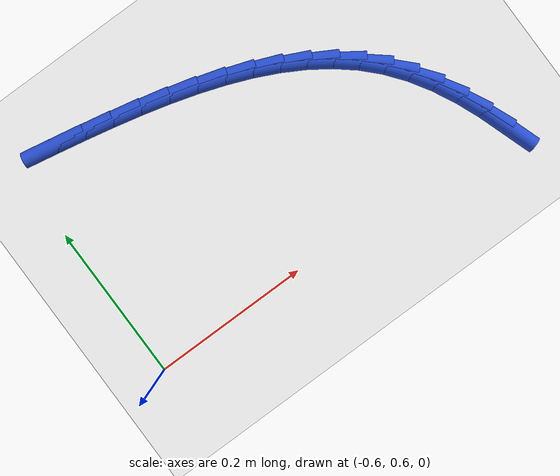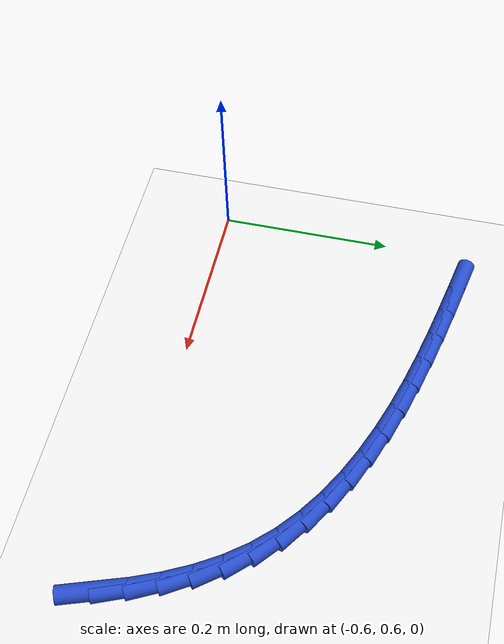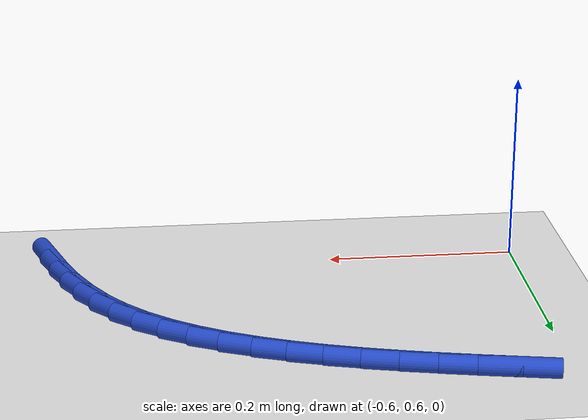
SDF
<sdf version="1.6">
 <world name="default">
  <model name="ground_plane">
   <static>1</static>
   <link name="link">
    <collision name="collision">
     <geometry><plane><normal>0 0 1</normal><size>100 100</size></plane></geometry>
     <surface><friction><ode><mu>100</mu><mu2>50</mu2></ode></friction></surface>
    </collision>
    <visual name="visual">
     <cast_shadows>0</cast_shadows>
     <geometry><plane><normal>0 0 1</normal><size>100 100</size></plane></geometry>
     <material>
      <script><uri>file://media/materials/scripts/gazebo.material</uri><name>Gazebo/WhiteGlow</name></script>
     </material>
    </visual>
   </link>
  </model>
  <model name="line">
   <link name="link_17">
    <pose>-0.09802239007583166 0.591212864363562 0.01 0 1.57 -1.2416689302785737</pose>
    <collision name="collision">
     <geometry><cylinder><radius>0.01</radius><length>0.08</length></cylinder></geometry>
    </collision>
    <visual name="visual">
     <material>
      <script><name>Gazebo/Blue</name><uri>file://media/materials/scripts/gazebo.material</uri></script>
     </material>
     <geometry><cylinder><radius>0.01</radius><length>0.08</length></cylinder></geometry>
    </visual>
   </link>
   <link name="link_18">
    <pose>-0.1089860676547239 0.6233126209198782 0.01 0 1.57 -1.1784509092266642</pose>
    <collision name="collision">
     <geometry><cylinder><radius>0.01</radius><length>0.08</length></cylinder></geometry>
    </collision>
    <visual name="visual">
     <material>
      <script><name>Gazebo/Blue</name><uri>file://media/materials/scripts/gazebo.material</uri></script>
     </material>
     <geometry><cylinder><radius>0.01</radius><length>0.08</length></cylinder></geometry>
    </visual>
   </link>
   <link name="link_19">
    <pose>-0.1216440753246022 0.6539023495384093 0.01 0 1.57 -1.1030576861954953</pose>
    <collision name="collision">
     <geometry><cylinder><radius>0.01</radius><length>0.08</length></cylinder></geometry>
    </collision>
    <visual name="visual">
     <material>
      <script><name>Gazebo/Blue</name><uri>file://media/materials/scripts/gazebo.material</uri></script>
     </material>
     <geometry><cylinder><radius>0.01</radius><length>0.08</length></cylinder></geometry>
    </visual>
   </link>
   <link name="link_20">
    <pose>-0.13621951564361212 0.6827575052322629 0.01 0 1.57 -1.0147154639845146</pose>
    <collision name="collision">
     <geometry><cylinder><radius>0.01</radius><length>0.08</length></cylinder></geometry>
    </collision>
    <visual name="visual">
     <material>
      <script><name>Gazebo/Blue</name><uri>file://media/materials/scripts/gazebo.material</uri></script>
     </material>
     <geometry><cylinder><radius>0.01</radius><length>0.08</length></cylinder></geometry>
    </visual>
   </link>
   <link name="link_21">
    <pose>-0.152935491169899 0.7096535430145458 0.01 0 1.57 -0.9133211662812847</pose>
    <collision name="collision">
     <geometry><cylinder><radius>0.01</radius><length>0.08</length></cylinder></geometry>
    </collision>
    <visual name="visual">
     <material>
      <script><name>Gazebo/Blue</name><uri>file://media/materials/scripts/gazebo.material</uri></script>
     </material>
     <geometry><cylinder><radius>0.01</radius><length>0.08</length></cylinder></geometry>
    </visual>
   </link>
   <link name="link_22">
    <pose>-0.17201510446160845 0.7343659178983653 0.01 0 1.57 -0.802004961885333</pose>
    <collision name="collision">
     <geometry><cylinder><radius>0.01</radius><length>0.08</length></cylinder></geometry>
    </collision>
    <visual name="visual">
     <material>
      <script><name>Gazebo/Blue</name><uri>file://media/materials/scripts/gazebo.material</uri></script>
     </material>
     <geometry><cylinder><radius>0.01</radius><length>0.08</length></cylinder></geometry>
    </visual>
   </link>
   <link name="link_23">
    <pose>-0.1936335747154588 0.7567146090715287 0.01 0 1.57 -0.6954426829183508</pose>
    <collision name="collision">
     <geometry><cylinder><radius>0.01</radius><length>0.08</length></cylinder></geometry>
    </collision>
    <visual name="visual">
     <material>
      <script><name>Gazebo/Blue</name><uri>file://media/materials/scripts/gazebo.material</uri></script>
     </material>
     <geometry><cylinder><radius>0.01</radius><length>0.08</length></cylinder></geometry>
    </visual>
   </link>
   <link name="link_24">
    <pose>-0.21768205709597643 0.776783731660052 0.01 0 1.57 -0.6000425534046825</pose>
    <collision name="collision">
     <geometry><cylinder><radius>0.01</radius><length>0.08</length></cylinder></geometry>
    </collision>
    <visual name="visual">
     <material>
      <script><name>Gazebo/Blue</name><uri>file://media/materials/scripts/gazebo.material</uri></script>
     </material>
     <geometry><cylinder><radius>0.01</radius><length>0.08</length></cylinder></geometry>
    </visual>
   </link>
   <link name="link_25">
    <pose>-0.24394735644211527 0.7947544305720565 0.01 0 1.57 -0.5164751111016785</pose>
    <collision name="collision">
     <geometry><cylinder><radius>0.01</radius><length>0.08</length></cylinder></geometry>
    </collision>
    <visual name="visual">
     <material>
      <script><name>Gazebo/Blue</name><uri>file://media/materials/scripts/gazebo.material</uri></script>
     </material>
     <geometry><cylinder><radius>0.01</radius><length>0.08</length></cylinder></geometry>
    </visual>
   </link>
   <link name="link_26">
    <pose>-0.2722161173716004 0.810807999696808 0.01 0 1.57 -0.4445273258515845</pose>
    <collision name="collision">
     <geometry><cylinder><radius>0.01</radius><length>0.08</length></cylinder></geometry>
    </collision>
    <visual name="visual">
     <material>
      <script><name>Gazebo/Blue</name><uri>file://media/materials/scripts/gazebo.material</uri></script>
     </material>
     <geometry><cylinder><radius>0.01</radius><length>0.08</length></cylinder></geometry>
    </visual>
   </link>
   <link name="link_27">
    <pose>-0.302274984502157 0.8251257329235725 0.01 0 1.57 -0.38347156673775146</pose>
    <collision name="collision">
     <geometry><cylinder><radius>0.01</radius><length>0.08</length></cylinder></geometry>
    </collision>
    <visual name="visual">
     <material>
      <script><name>Gazebo/Blue</name><uri>file://media/materials/scripts/gazebo.material</uri></script>
     </material>
     <geometry><cylinder><radius>0.01</radius><length>0.08</length></cylinder></geometry>
    </visual>
   </link>
   <link name="link_28">
    <pose>-0.33391060245151 0.837888924141616 0.01 0 1.57 -0.33235662382471465</pose>
    <collision name="collision">
     <geometry><cylinder><radius>0.01</radius><length>0.08</length></cylinder></geometry>
    </collision>
    <visual name="visual">
     <material>
      <script><name>Gazebo/Blue</name><uri>file://media/materials/scripts/gazebo.material</uri></script>
     </material>
     <geometry><cylinder><radius>0.01</radius><length>0.08</length></cylinder></geometry>
    </visual>
   </link>
   <link name="link_29">
    <pose>-0.3669096158373849 0.8492788672402043 0.01 0 1.57 -0.29020097385252064</pose>
    <collision name="collision">
     <geometry><cylinder><radius>0.01</radius><length>0.08</length></cylinder></geometry>
    </collision>
    <visual name="visual">
     <material>
      <script><name>Gazebo/Blue</name><uri>file://media/materials/scripts/gazebo.material</uri></script>
     </material>
     <geometry><cylinder><radius>0.01</radius><length>0.08</length></cylinder></geometry>
    </visual>
   </link>
   <link name="link_30">
    <pose>-0.40105866927750633 0.8594768561086029 0.01 0 1.57 -0.25610354938143925</pose>
    <collision name="collision">
     <geometry><cylinder><radius>0.01</radius><length>0.08</length></cylinder></geometry>
    </collision>
    <visual name="visual">
     <material>
      <script><name>Gazebo/Blue</name><uri>file://media/materials/scripts/gazebo.material</uri></script>
     </material>
     <geometry><cylinder><radius>0.01</radius><length>0.08</length></cylinder></geometry>
    </visual>
   </link>
   <link name="link_31">
    <pose>-0.4361444073895997 0.8686641846360783 0.01 0 1.57 -0.2292984868983398</pose>
    <collision name="collision">
     <geometry><cylinder><radius>0.01</radius><length>0.08</length></cylinder></geometry>
    </collision>
    <visual name="visual">
     <material>
      <script><name>Gazebo/Blue</name><uri>file://media/materials/scripts/gazebo.material</uri></script>
     </material>
     <geometry><cylinder><radius>0.01</radius><length>0.08</length></cylinder></geometry>
    </visual>
   </link>
   <link name="link_32">
    <pose>-0.47195347479138994 0.8770221467118957 0.01 0 1.57 -0.2091770866374355</pose>
    <collision name="collision">
     <geometry><cylinder><radius>0.01</radius><length>0.08</length></cylinder></geometry>
    </collision>
    <visual name="visual">
     <material>
      <script><name>Gazebo/Blue</name><uri>file://media/materials/scripts/gazebo.material</uri></script>
     </material>
     <geometry><cylinder><radius>0.01</radius><length>0.08</length></cylinder></geometry>
    </visual>
   </link>
   <link name="link_33">
    <pose>-0.5082725161006023 0.8847320362253212 0.01 0 1.57 -0.19529330008092677</pose>
    <collision name="collision">
     <geometry><cylinder><radius>0.01</radius><length>0.08</length></cylinder></geometry>
    </collision>
    <visual name="visual">
     <material>
      <script><name>Gazebo/Blue</name><uri>file://media/materials/scripts/gazebo.material</uri></script>
     </material>
     <geometry><cylinder><radius>0.01</radius><length>0.08</length></cylinder></geometry>
    </visual>
   </link>
   <link name="link_34">
    <pose>-0.5448881759349619 0.8919751470656209 0.01 0 1.57 -0.18736297332701268</pose>
    <collision name="collision">
     <geometry><cylinder><radius>0.01</radius><length>0.08</length></cylinder></geometry>
    </collision>
    <visual name="visual">
     <material>
      <script><name>Gazebo/Blue</name><uri>file://media/materials/scripts/gazebo.material</uri></script>
     </material>
     <geometry><cylinder><radius>0.01</radius><length>0.08</length></cylinder></geometry>
    </visual>
   </link>
  </model>
 </world>
</sdf>
